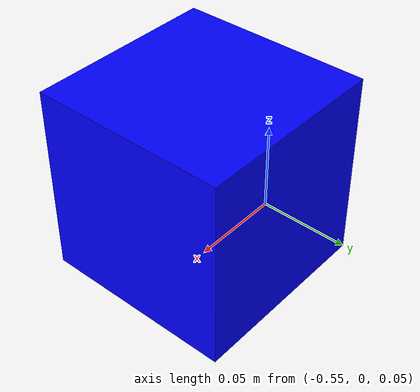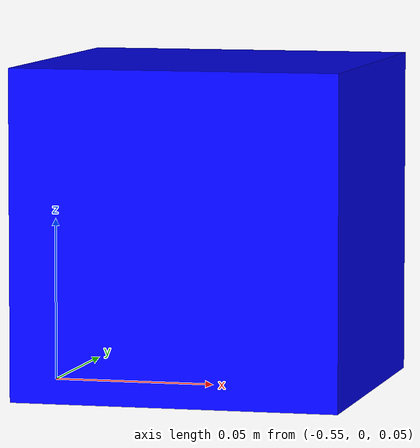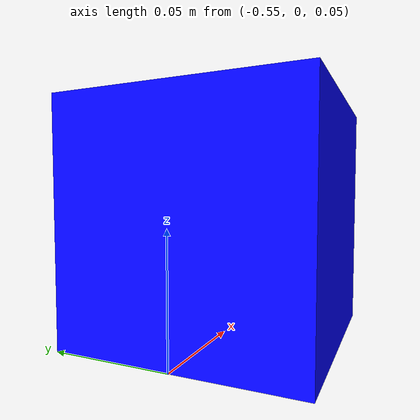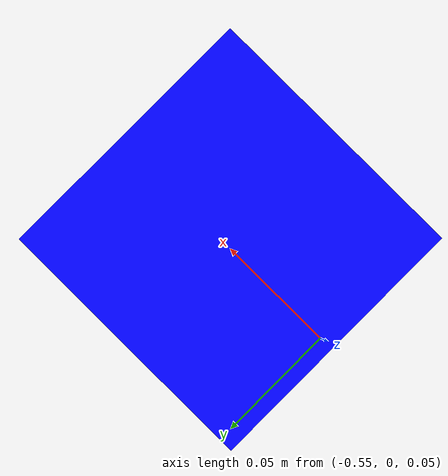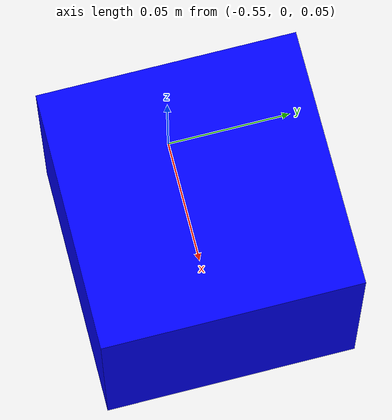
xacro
<?xml version="1.0"?>
<robot xmlns:xacro="http://www.ros.org/wiki/xacro" name="reference_marker">

  <link name="ref_root"/>

  <link name="obstacle_base_link">
    <inertial>
      <mass value="2.0"/>
      <inertia ixx="0.05" ixy="0.0" ixz="0.0" iyy="0.05" iyz="0.0" izz="0.08"/>
    </inertial>

    <visual>
      <origin xyz="-0.5 0.0 0.1" rpy="0 0 0"/>
      <geometry><box size="0.1 0.1 0.1"/></geometry>
      <material name="blue"><color rgba="0 0 1 1"/></material>
    </visual>

  </link>

  <joint name="ref_joint" type="fixed">
    <parent link="ref_root"/>
    <child link="obstacle_base_link"/>
    <origin xyz="0 0 0" rpy="0 0 0"/>
  </joint>

  <gazebo>
    <static>true</static>
  </gazebo>

</robot>
